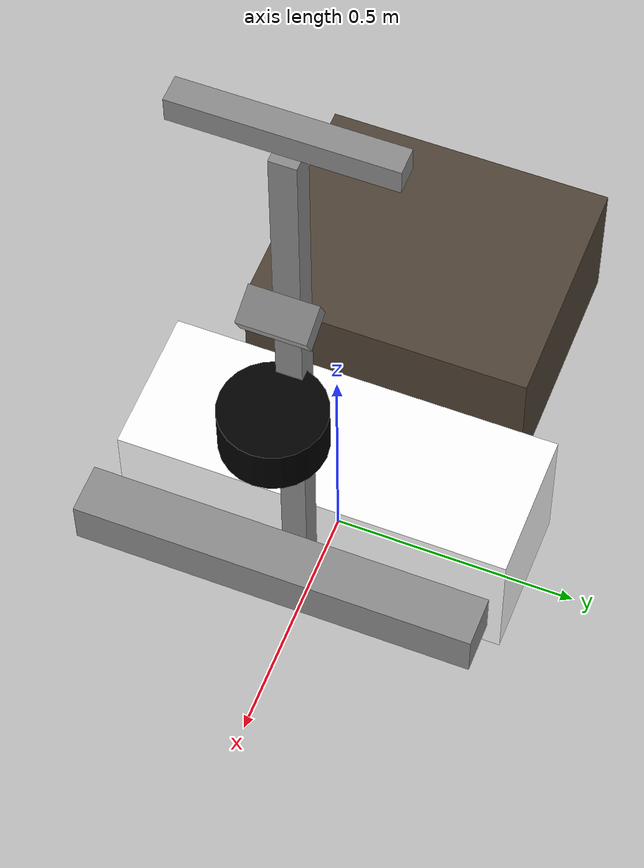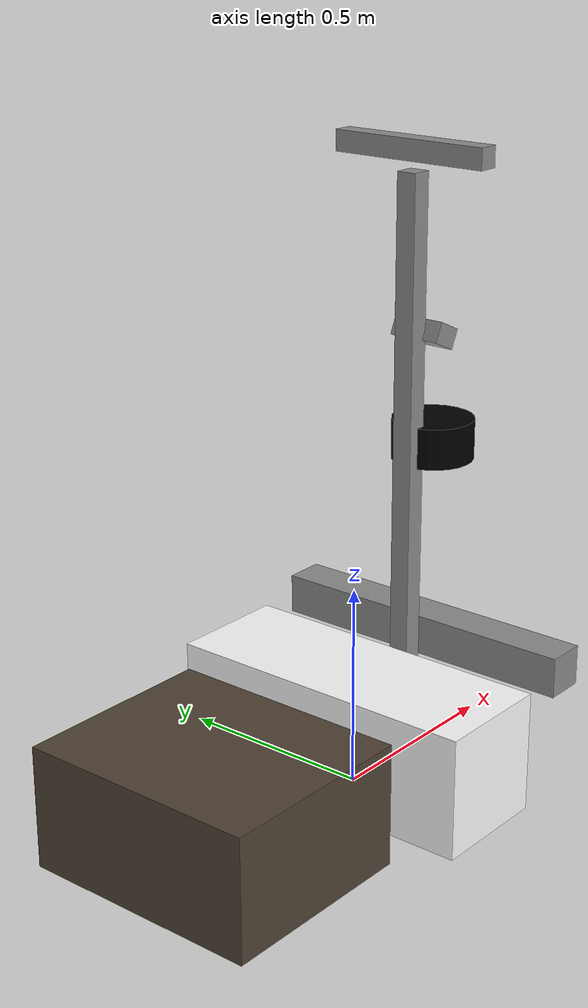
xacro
<?xml version="1.0"?>
<robot name="scoomatic" xmlns:xacro="http://ros.org/wiki/xacro">
  <!-- Define robot constants -->
  <xacro:property name="base_width" value="0.8"/>
  <xacro:property name="base_length" value="0.3"/>
  <xacro:property name="base_height" value="0.3"/>

  <!-- Angle in deg between chassis and realsense (positive for looking downwards) -->
  <xacro:property name="realsense_angle" value="25"/>

  <!-- Links -->
    <link name="base_link">
        <visual>
            <geometry>
                <box size="${base_length} ${base_width} ${base_height}"/>
            </geometry>
            <origin xyz="0.0 0.0 0.15"/>
            <material name="white"/>
        </visual>
        <collision>
            <geometry>
                <box size="${base_length} ${base_width} ${base_height}"/>
            </geometry>
            <origin xyz="0.0 0.0 0.15"/>
        </collision>
    </link>

  <!-- Robot Footprint -->
  <link name="base_footprint">
    <inertial>
      <origin xyz="0 0 0" rpy="${pi/2} 0 ${pi/2}"/>
      <mass value="0"/>
      <inertia ixx="0" ixy="0.0" ixz="0.0" iyy="0" iyz="0.0" izz="0"/>
    </inertial>
  </link>
  <joint name="base_joint" type="fixed">
    <parent link="base_link"/>
    <child link="base_footprint"/>
    <origin xyz="0.0 0.0 0.0" rpy="0 0 0"/>
  </joint>

    <link name="base_platform">
        <visual>
            <geometry>
                <box size="0.5 0.6 0.3"/>
            </geometry>
            <material name="wood_brown"/>
        </visual>
        <collision>
            <geometry>
                <box size="0.5 0.6 0.3"/>
            </geometry>
        </collision>
    </link>

     <link name="frame_main_bar">
        <visual>
            <geometry>
                <box size="0.05 0.05 1.3"/>
            </geometry>
            <material name="aluminium"/>
        </visual>
        <collision>
            <geometry>
                <box size="0.05 0.05 1.3"/>
            </geometry>
        </collision>
    </link>
    <link name="frame_hand_bar">
        <visual>
            <geometry>
                <box size="0.05 0.4 0.05"/>
            </geometry>
            <material name="aluminium"/>
        </visual>
        <collision>
            <geometry>
                <box size="0.05 0.4 0.05"/>
            </geometry>
        </collision>
    </link>

    <!-- Sensor links -->
    <link name="laser">
        <visual>
            <geometry>
                <cylinder length="0.1" radius="0.1"/>
            </geometry>
            <material name="black"/>
        </visual>
        <collision>
            <geometry>
                <cylinder length="0.1" radius="0.1"/>
            </geometry>
        </collision>
    </link>

    <link name="realsense">
        <visual>
            <geometry>
               <box size="0.07 0.13 0.05"/>
            </geometry>
            <material name="aluminium"/>
        </visual>
        <collision>
            <geometry>
                <box size="0.07 0.13 0.05"/>
            </geometry>
        </collision>
    </link>

    <link name="sensor_sonar">
        <visual>
            <geometry>
                <box size="0.1 0.8 0.1"/>
            </geometry>
            <material name="aluminium"/>
        </visual>
        <collision>
            <geometry>
                <box size="0.1 0.8 0.1"/>
            </geometry>
        </collision>
    </link>

    <link name="sensor_imu">
        <visual>
            <geometry>
                <box size="0.02 0.01 0.02"/>
            </geometry>
            <material name="white"/>
        </visual>
        <collision>
            <geometry>
                <box size="0.02 0.01 0.02"/>
            </geometry>
        </collision>
    </link>

    <!-- Joints -->
    <joint name="base_to_mainbar" type="fixed">
        <origin xyz="0.2 0.0 0.8"/>
        <parent link="base_link"/>
        <child link="frame_main_bar"/>
    </joint>

    <joint name="base_to_platform" type="fixed">
        <origin xyz="-0.5 0.0 0.15"/>
        <parent link="base_link"/>
        <child link="base_platform"/>
    </joint>

    <joint name="base_to_sonar" type="fixed">
        <origin xyz="0.3 0.0 0.3"/>
        <parent link="base_link"/>
        <child link="sensor_sonar"/>
    </joint>

    <joint name="base_to_imu" type="fixed">
        <origin xyz="0.05 -0.01 0.15"/>
        <parent link="base_link"/>
        <child link="sensor_imu"/>
    </joint>

    <joint name="frame_to_laser" type="fixed">
        <origin xyz="0.1 0.0 0.0" rpy="0.0 0.0 3.141592"/>
        <parent link="frame_main_bar"/>
        <child link="laser"/>
    </joint>

    <joint name="frame_to_realsense" type="fixed">
        <origin xyz="0.055 0.0 0.27" rpy="0.0 ${radians(realsense_angle)} 0"/>
        <parent link="frame_main_bar"/>
        <child link="realsense"/>
    </joint>

    <joint name="mainbar_to_handbar" type="fixed">
        <origin xyz="0.0 0.0 0.7"/>
        <parent link="frame_main_bar"/>
        <child link="frame_hand_bar"/>
    </joint>

    <!-- Materials -->
    <material name="aluminium">
        <color rgba="0.55 0.55 0.55 1.0"/>
    </material>

    <material name="wood_brown">
        <color rgba="0.31 0.26 0.21 1.0"/>
    </material>

    <material name="black">
        <color rgba="0.0 0.0 0.0 1.0"/>
    </material>

    <material name="white">
        <color rgba="1.0 1.0 1.0 1.0"/>
    </material>

</robot>
